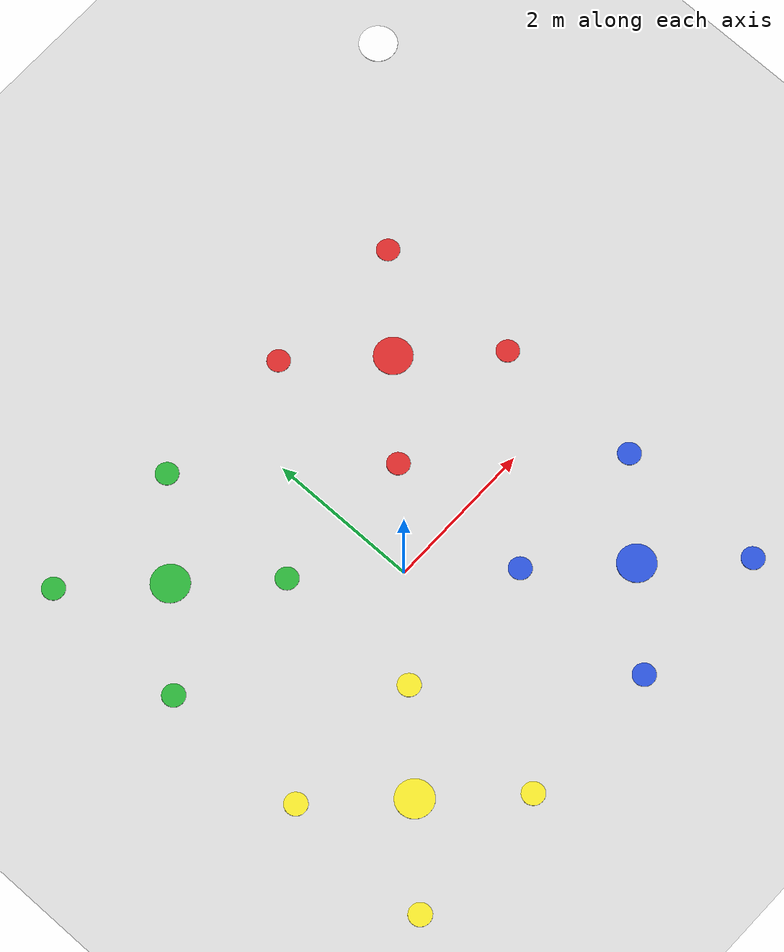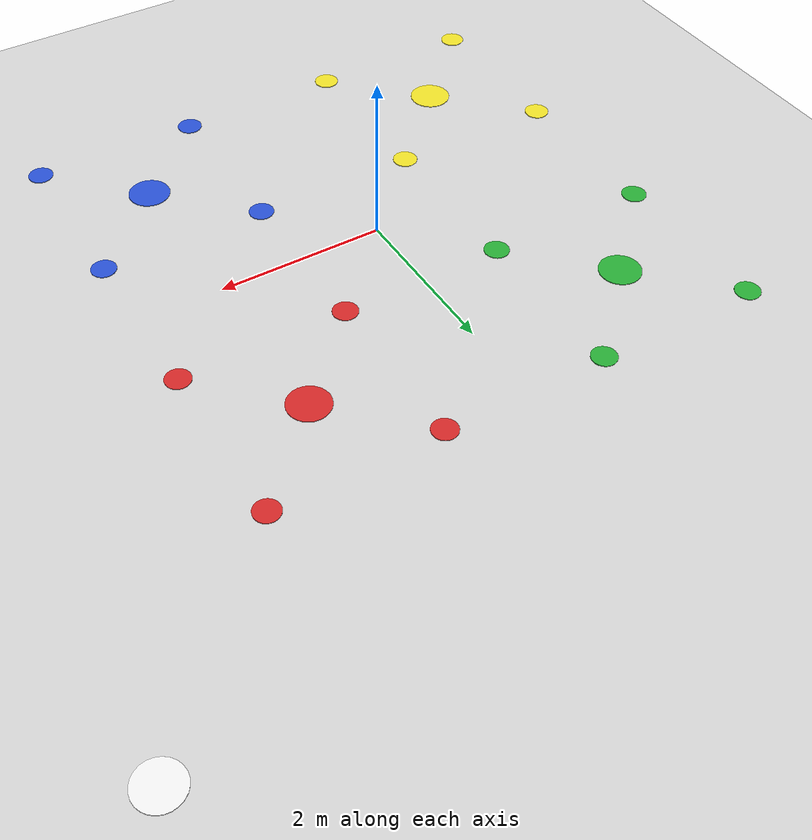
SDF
<sdf version="1.6">
 <world name="default">
  <include><uri>model://sun</uri></include>
  <scene><shadows>0</shadows><grid>0</grid><origin_visual>1</origin_visual></scene>
  <include><uri>model://ground_plane</uri></include>
  <physics type="ode">
   <real_time_update_rate>1000.0</real_time_update_rate>
   <max_step_size>0.001</max_step_size>
   <real_time_factor>1</real_time_factor>
   <ode>
    <solver>
     <type>quick</type>
     <iters>150</iters>
     <precon_iters>0</precon_iters>
     <sor>1.400000</sor>
     <use_dynamic_moi_rescaling>1</use_dynamic_moi_rescaling>
    </solver>
    <constraints>
     <cfm>0.00001</cfm>
     <erp>0.2</erp>
     <contact_max_correcting_vel>2000.000000</contact_max_correcting_vel>
     <contact_surface_layer>0.01000</contact_surface_layer>
    </constraints>
   </ode>
  </physics>
  <model name="ros_symbol">
   <static>1</static>
   <link name="symbol">
    <visual name="yellow_dot">
     <pose>-2.0 -2.0 0.0 0 0 0</pose>
     <geometry><cylinder><radius>0.25</radius><length>0.01</length></cylinder></geometry>
     <material>
      <script><uri>file://media/materials/scripts/gazebo.material</uri><name>Gazebo/Yellow</name></script>
     </material>
    </visual>
    <visual name="yellow_dot_one">
     <pose>-1.0 -1.0 0.0 0 0 0</pose>
     <geometry><cylinder><radius>0.15</radius><length>0.01</length></cylinder></geometry>
     <material>
      <script><uri>file://media/materials/scripts/gazebo.material</uri><name>Gazebo/Yellow</name></script>
     </material>
    </visual>
    <visual name="yellow_dot_two">
     <pose>-1.0 -3.0 0.0 0 0 0</pose>
     <geometry><cylinder><radius>0.15</radius><length>0.01</length></cylinder></geometry>
     <material>
      <script><uri>file://media/materials/scripts/gazebo.material</uri><name>Gazebo/Yellow</name></script>
     </material>
    </visual>
    <visual name="yellow_dot_three">
     <pose>-3.0 -3.0 0.0 0 0 0</pose>
     <geometry><cylinder><radius>0.15</radius><length>0.01</length></cylinder></geometry>
     <material>
      <script><uri>file://media/materials/scripts/gazebo.material</uri><name>Gazebo/Yellow</name></script>
     </material>
    </visual>
    <visual name="yellow_dot_four">
     <pose>-3.0 -1.0 0.0 0 0 0</pose>
     <geometry><cylinder><radius>0.15</radius><length>0.01</length></cylinder></geometry>
     <material>
      <script><uri>file://media/materials/scripts/gazebo.material</uri><name>Gazebo/Yellow</name></script>
     </material>
    </visual>
    <visual name="blue_dot">
     <pose>2.0 -2.0 0.0 0 0 0</pose>
     <geometry><cylinder><radius>0.25</radius><length>0.01</length></cylinder></geometry>
     <material>
      <script><uri>file://media/materials/scripts/gazebo.material</uri><name>Gazebo/Blue</name></script>
     </material>
    </visual>
    <visual name="blue_dot_one">
     <pose>1.0 -1.0 0.0 0 0 0</pose>
     <geometry><cylinder><radius>0.15</radius><length>0.01</length></cylinder></geometry>
     <material>
      <script><uri>file://media/materials/scripts/gazebo.material</uri><name>Gazebo/Blue</name></script>
     </material>
    </visual>
    <visual name="blue_dot_two">
     <pose>1.0 -3.0 0.0 0 0 0</pose>
     <geometry><cylinder><radius>0.15</radius><length>0.01</length></cylinder></geometry>
     <material>
      <script><uri>file://media/materials/scripts/gazebo.material</uri><name>Gazebo/Blue</name></script>
     </material>
    </visual>
    <visual name="blue_dot_three">
     <pose>3.0 -1.0 0.0 0 0 0</pose>
     <geometry><cylinder><radius>0.15</radius><length>0.01</length></cylinder></geometry>
     <material>
      <script><uri>file://media/materials/scripts/gazebo.material</uri><name>Gazebo/Blue</name></script>
     </material>
    </visual>
    <visual name="blue_dot_four">
     <pose>3.0 -3.0 0.0 0 0 0</pose>
     <geometry><cylinder><radius>0.15</radius><length>0.01</length></cylinder></geometry>
     <material>
      <script><uri>file://media/materials/scripts/gazebo.material</uri><name>Gazebo/Blue</name></script>
     </material>
    </visual>
    <visual name="red_dot">
     <pose>2.0 2.0 0.0 0 0 0</pose>
     <geometry><cylinder><radius>0.25</radius><length>0.01</length></cylinder></geometry>
     <material>
      <script><uri>file://media/materials/scripts/gazebo.material</uri><name>Gazebo/Red</name></script>
     </material>
    </visual>
    <visual name="red_dot_one">
     <pose>1.0 1.0 0.0 0 0 0</pose>
     <geometry><cylinder><radius>0.15</radius><length>0.01</length></cylinder></geometry>
     <material>
      <script><uri>file://media/materials/scripts/gazebo.material</uri><name>Gazebo/Red</name></script>
     </material>
    </visual>
    <visual name="red_dot_two">
     <pose>1.0 3.0 0.0 0 0 0</pose>
     <geometry><cylinder><radius>0.15</radius><length>0.01</length></cylinder></geometry>
     <material>
      <script><uri>file://media/materials/scripts/gazebo.material</uri><name>Gazebo/Red</name></script>
     </material>
    </visual>
    <visual name="red_dot_three">
     <pose>3.0 1.0 0.0 0 0 0</pose>
     <geometry><cylinder><radius>0.15</radius><length>0.01</length></cylinder></geometry>
     <material>
      <script><uri>file://media/materials/scripts/gazebo.material</uri><name>Gazebo/Red</name></script>
     </material>
    </visual>
    <visual name="red_dot_four">
     <pose>3.0 3.0 0.0 0 0 0</pose>
     <geometry><cylinder><radius>0.15</radius><length>0.01</length></cylinder></geometry>
     <material>
      <script><uri>file://media/materials/scripts/gazebo.material</uri><name>Gazebo/Red</name></script>
     </material>
    </visual>
    <visual name="green_dot">
     <pose>-2.0 2.0 0.0 0 0 0</pose>
     <geometry><cylinder><radius>0.25</radius><length>0.01</length></cylinder></geometry>
     <material>
      <script><uri>file://media/materials/scripts/gazebo.material</uri><name>Gazebo/Green</name></script>
     </material>
    </visual>
    <visual name="green_dot_one">
     <pose>-1.0 1.0 0.0 0 0 0</pose>
     <geometry><cylinder><radius>0.15</radius><length>0.01</length></cylinder></geometry>
     <material>
      <script><uri>file://media/materials/scripts/gazebo.material</uri><name>Gazebo/Green</name></script>
     </material>
    </visual>
    <visual name="green_dot_two">
     <pose>-1.0 3.0 0.0 0 0 0</pose>
     <geometry><cylinder><radius>0.15</radius><length>0.01</length></cylinder></geometry>
     <material>
      <script><uri>file://media/materials/scripts/gazebo.material</uri><name>Gazebo/Green</name></script>
     </material>
    </visual>
    <visual name="green_dot_three">
     <pose>-3.0 1.0 0.0 0 0 0</pose>
     <geometry><cylinder><radius>0.15</radius><length>0.01</length></cylinder></geometry>
     <material>
      <script><uri>file://media/materials/scripts/gazebo.material</uri><name>Gazebo/Green</name></script>
     </material>
    </visual>
    <visual name="green_dot_four">
     <pose>-3.0 3.0 0.0 0 0 0</pose>
     <geometry><cylinder><radius>0.15</radius><length>0.01</length></cylinder></geometry>
     <material>
      <script><uri>file://media/materials/scripts/gazebo.material</uri><name>Gazebo/Green</name></script>
     </material>
    </visual>
    <visual name="white_dot">
     <pose>5.0 5.0 0.0 0 0 0</pose>
     <geometry><cylinder><radius>0.25</radius><length>0.01</length></cylinder></geometry>
     <material>
      <script><uri>file://media/materials/scripts/gazebo.material</uri><name>Gazebo/White</name></script>
     </material>
    </visual>
   </link>
  </model>
 </world>
</sdf>
